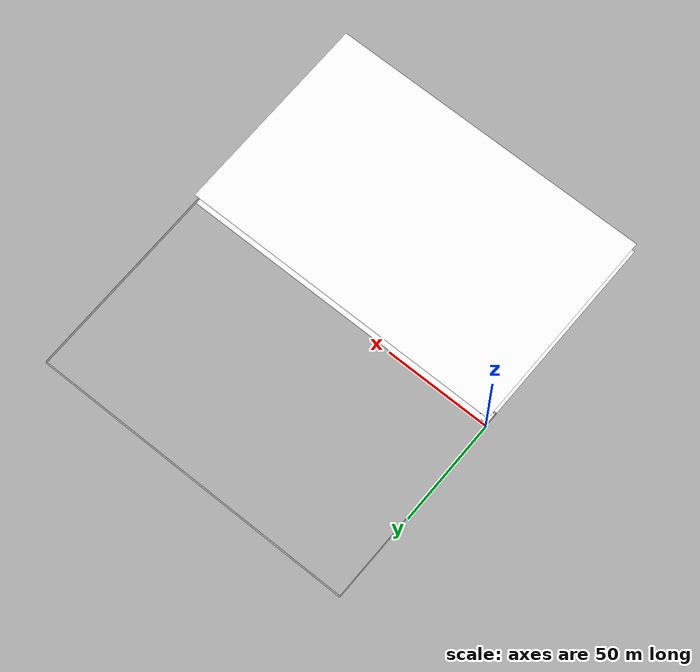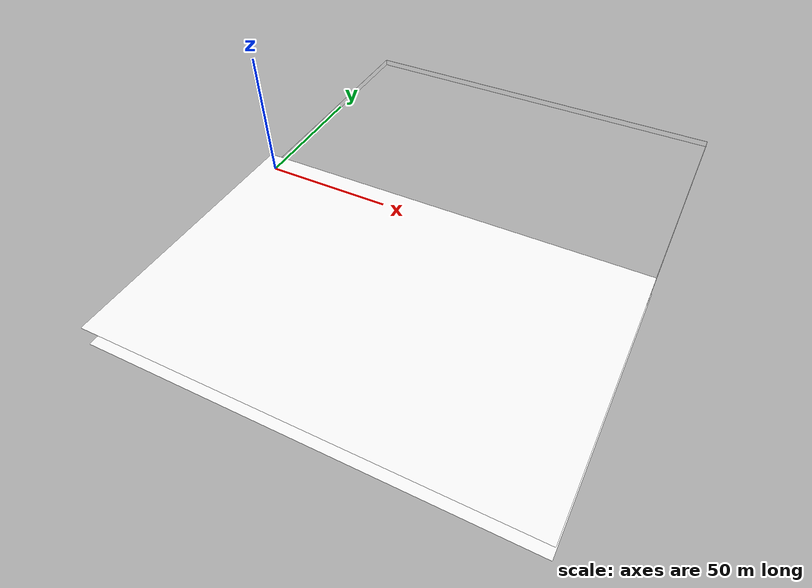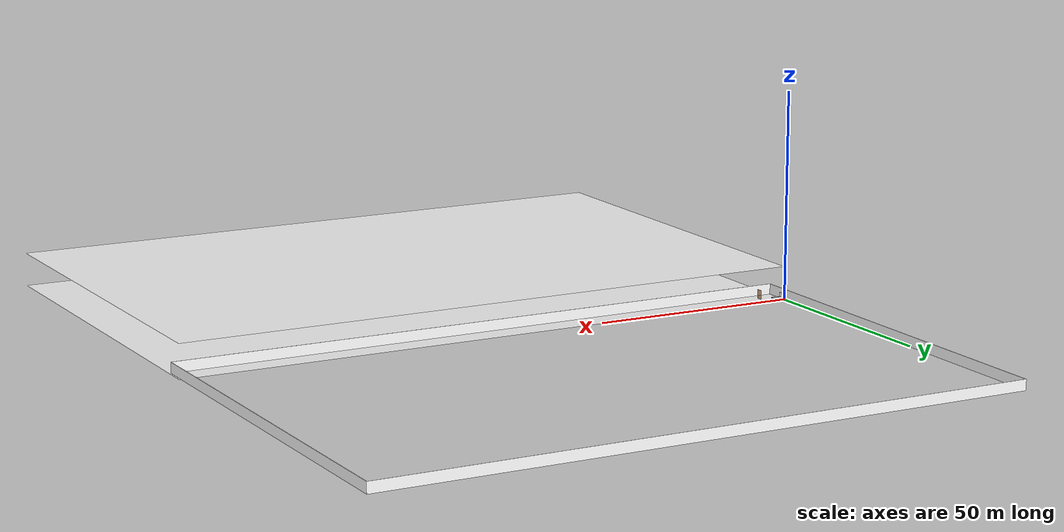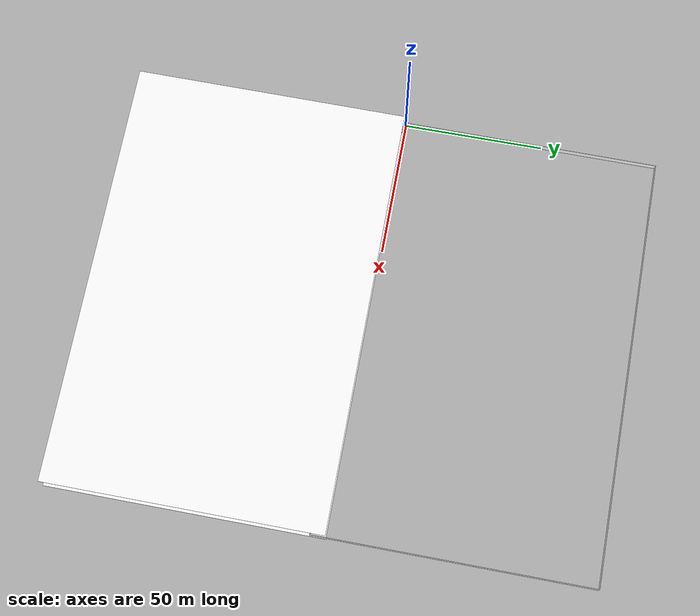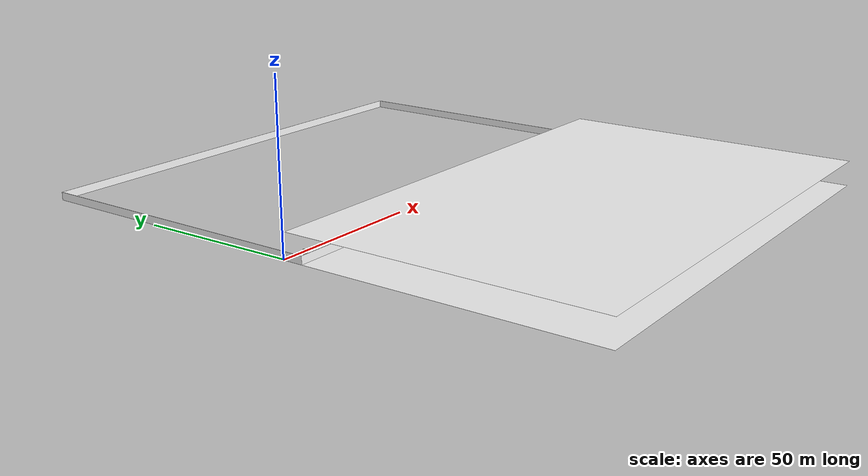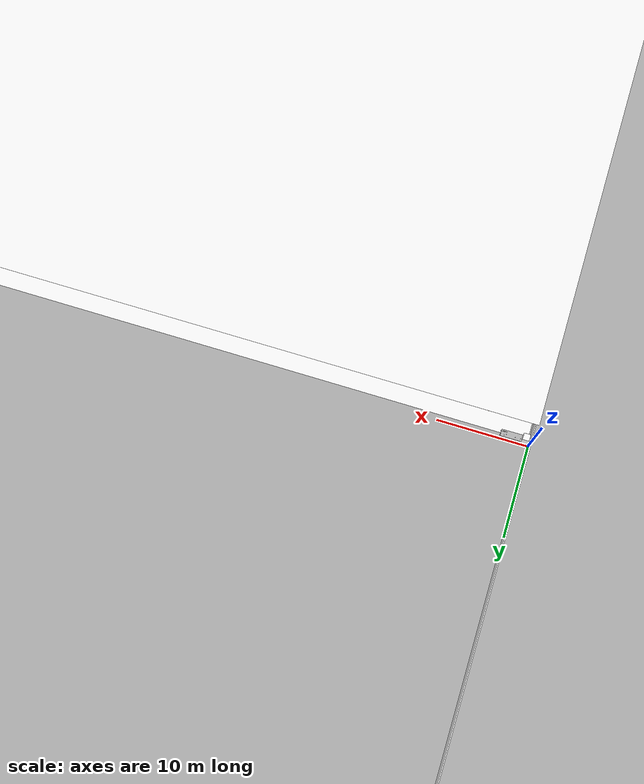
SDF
<sdf version="1.7">
 <world name="sim_world">
  <physics name="10ms" type="ode">
   <max_step_size>0.01</max_step_size>
   <real_time_factor>1.0</real_time_factor>
  </physics>
  <plugin filename="libgz-sim-physics-system.so" name="gz::sim::systems::Physics"/>
  <plugin filename="libgz-sim-user-commands-system.so" name="gz::sim::systems::UserCommands"/>
  <plugin filename="libgz-sim-scene-broadcaster-system.so" name="gz::sim::systems::SceneBroadcaster"/>
  <plugin filename="libdoor.so" name="door"/>
  <plugin filename="liblift.so" name="lift"/>
  <scene><ambient>1 1 1</ambient><background>0.8 0.8 0.8</background><grid>false</grid></scene>
  <light type="directional" name="sun">
   <pose>0 0 10 0 0 0</pose>
   <diffuse>1 1 1 1</diffuse>
   <specular>0.2 0.2 0.2 1</specular>
   <attenuation>
    <range>1000</range>
    <constant>0.09</constant>
    <linear>0.001</linear>
    <quadratic>0.001</quadratic>
   </attenuation>
   <direction>-0.5 0.1 -0.9</direction>
  </light>
  <include>
   <name>OpenRobotics/Fridge</name>
   <uri>model://Fridge</uri>
   <pose>0.5120249403445921 -0.6173672970267325 0.0 0 0 -1.5708</pose>
   <static>True</static>
  </include>
  <include>
   <name>OpenRobotics/KitchenCountertop</name>
   <uri>model://KitchenCountertop</uri>
   <pose>2.0185961031836173 -0.5501067546664516 0.0 0 0 -1.5646</pose>
   <static>True</static>
  </include>
  <model name="door1">
   <pose>5.001974826541852 -3.222592304448278 0.0 0 0 1.580900395192024</pose>
   <link name="right">
    <pose>0 0 1.11 0 0 0</pose>
    <visual name="right_visual">
     <geometry><box><size>1.5336270100963039 0.03 2.2</size></box></geometry>
     <material>
      <ambient>0.5 0.25 0 0.6</ambient>
      <diffuse>0.5 0.25 0 0.6</diffuse>
      <pbr><metal><metalness>0.0</metalness></metal></pbr>
     </material>
    </visual>
    <collision name="right_collision">
     <geometry><box><size>1.5336270100963039 0.03 2.2</size></box></geometry>
     <surface><contact><collide_bitmask>0x02</collide_bitmask></contact></surface>
    </collision>
    <inertial>
     <mass>50.0</mass>
     <inertia><ixx>20.17041666666667</ixx><iyy>29.966715858737206</iyy><izz>9.803799192070537</izz></inertia>
    </inertial>
   </link>
   <joint name="right_joint" type="revolute">
    <parent>world</parent>
    <child>right</child>
    <axis><xyz>0 0 -1</xyz><limit><lower>0</lower><upper>1.57</upper></limit></axis>
    <pose>0.7718135050481519 0 0 0 0 0</pose>
   </joint>
   <plugin name="register_component" filename="libregister_component.so">
    <component name="Door">
     <v_max_door>0.5</v_max_door>
     <a_max_door>0.3</a_max_door>
     <a_nom_door>0.15</a_nom_door>
     <dx_min_door>0.01</dx_min_door>
     <f_max_door>500.0</f_max_door>
     <ros_interface>true</ros_interface>
     <door name="door1" type="SwingDoor" left_joint_name="empty_joint" right_joint_name="right_joint"/>
    </component>
   </plugin>
  </model>
  <include><name>first_project_L1</name><uri>model://first_project_L1</uri></include>
  <include><name>first_project_L2</name><uri>model://first_project_L2</uri><pose>0 0 8.0 0 0 0</pose></include>
  <rmf_charger_waypoints name="charger_waypoints"/>
 </world>
</sdf>

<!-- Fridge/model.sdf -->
<sdf version="1.6">
  <model name="Fridge">
    <static>true</static>
    <link name="base_link">
      <visual name="visual">
        <geometry>
          <mesh>
            <uri>meshes/fridge.dae</uri>
          </mesh>
        </geometry>
        <material>
          <diffuse>1.0 1.0 1.0</diffuse>
          <specular>1.0 1.0 1.0</specular>
          <pbr>
            <metal>
              <albedo_map>materials/textures/Fridge_Albedo.jpg</albedo_map>
              <normal_map>materials/textures/Fridge_Normal.png</normal_map>
              <roughness_map>materials/textures/Fridge_Roughness.jpg</roughness_map>
              <metalness_map>materials/textures/Fridge_Metalness.jpg</metalness_map>
            </metal>
          </pbr>
        </material>
      </visual>
      <collision name="Box001">
        <pose>0.0 0.0 0.867923 0.0 0.0 0.0</pose>
        <geometry>
          <box>
            <size>0.734673 0.7239 1.73585</size>
          </box>
        </geometry>
      </collision>
    </link>
  </model>
</sdf>

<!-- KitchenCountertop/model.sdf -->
<sdf version="1.5">
  <model name="KitchenCountertop">
    <link name="link">
      <pose>0 0 0 0 0 0</pose>

        <visual name="visual">
          <geometry>
            <mesh><uri>model://KitchenCountertop/meshes/Counter.obj</uri></mesh>
          </geometry>
        </visual>

        <collision name="collision">
          <geometry>
            <mesh><uri>model://KitchenCountertop/meshes/Counter.obj</uri></mesh>
          </geometry>
        </collision>

    </link>
  </model>
</sdf>

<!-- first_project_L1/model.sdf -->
<sdf version="1.7">
  <model name="first_project_L1">
    <static>true</static>
    <link name="floor_1">
      <visual name="visual">
        <geometry>
          <mesh>
            <uri>model://first_project_L1/meshes/floor_1.obj</uri>
          </mesh>
        </geometry>
        <material>
          <diffuse>1.0 1.0 1.0</diffuse>
          <specular>0.1 0.1 0.1</specular>
          <pbr>
            <metal>
              <metalness>0.0</metalness>
              <albedo_map>model://first_project_L1/meshes/blue_linoleum.png</albedo_map>
            </metal>
          </pbr>
          <script>
            <uri>model://first_project_L1/meshes/</uri>
            <name>floor_1_Diffuse</name>
          </script>
        </material>
      </visual>
      <collision name="collision">
        <geometry>
          <mesh>
            <uri>model://first_project_L1/meshes/floor_1.obj</uri>
          </mesh>
        </geometry>
        <surface>
          <contact>
            <collide_bitmask>0x01</collide_bitmask>
          </contact>
        </surface>
      </collision>
    </link>
    <link name="wall_1">
      <visual name="wall_1">
        <geometry>
          <mesh>
            <uri>model://first_project_L1/meshes/wall_1.obj</uri>
          </mesh>
        </geometry>
        <transparency>0.0</transparency>
        <material>
          <diffuse>1.0 1.0 1.0</diffuse>
          <specular>0.1 0.1 0.1</specular>
          <pbr>
            <metal>
              <metalness>0.0</metalness>
              <albedo_map>model://first_project_L1/meshes/default.png</albedo_map>
            </metal>
          </pbr>
          <script>
            <uri>model://first_project_L1/meshes/</uri>
            <name>wall_1_Diffuse</name>
          </script>
        </material>
      </visual>
      <collision name="collision">
        <geometry>
          <mesh>
            <uri>model://first_project_L1/meshes/wall_1.obj</uri>
          </mesh>
        </geometry>
        <surface>
          <contact>
            <collide_bitmask>0x01</collide_bitmask>
          </contact>
        </surface>
      </collision>
      <pose>-0.07229624877621038 -6.478749183038246 0 0 0 0</pose>
    </link>
  </model>
</sdf>

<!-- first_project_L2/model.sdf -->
<sdf version="1.7">
  <model name="first_project_L2">
    <static>true</static>
    <link name="floor_1">
      <visual name="visual">
        <geometry>
          <mesh>
            <uri>model://first_project_L2/meshes/floor_1.obj</uri>
          </mesh>
        </geometry>
        <material>
          <diffuse>1.0 1.0 1.0</diffuse>
          <specular>0.1 0.1 0.1</specular>
          <pbr>
            <metal>
              <metalness>0.0</metalness>
              <albedo_map>model://first_project_L2/meshes/blue_linoleum.png</albedo_map>
            </metal>
          </pbr>
          <script>
            <uri>model://first_project_L2/meshes/</uri>
            <name>floor_1_Diffuse</name>
          </script>
        </material>
      </visual>
      <collision name="collision">
        <geometry>
          <mesh>
            <uri>model://first_project_L2/meshes/floor_1.obj</uri>
          </mesh>
        </geometry>
        <surface>
          <contact>
            <collide_bitmask>0x01</collide_bitmask>
          </contact>
        </surface>
      </collision>
    </link>
  </model>
</sdf>
